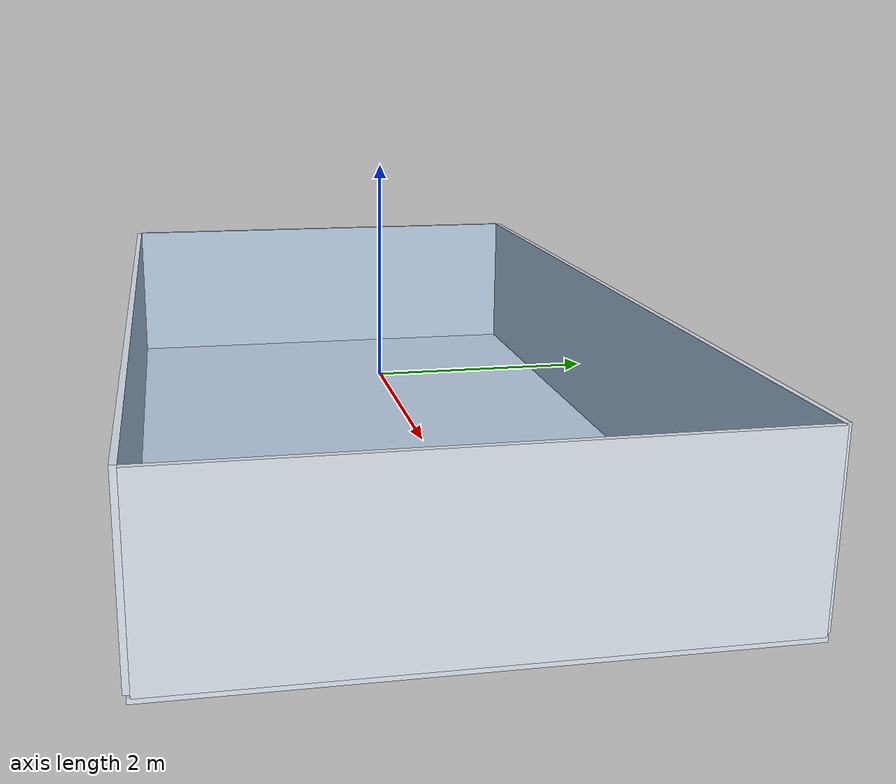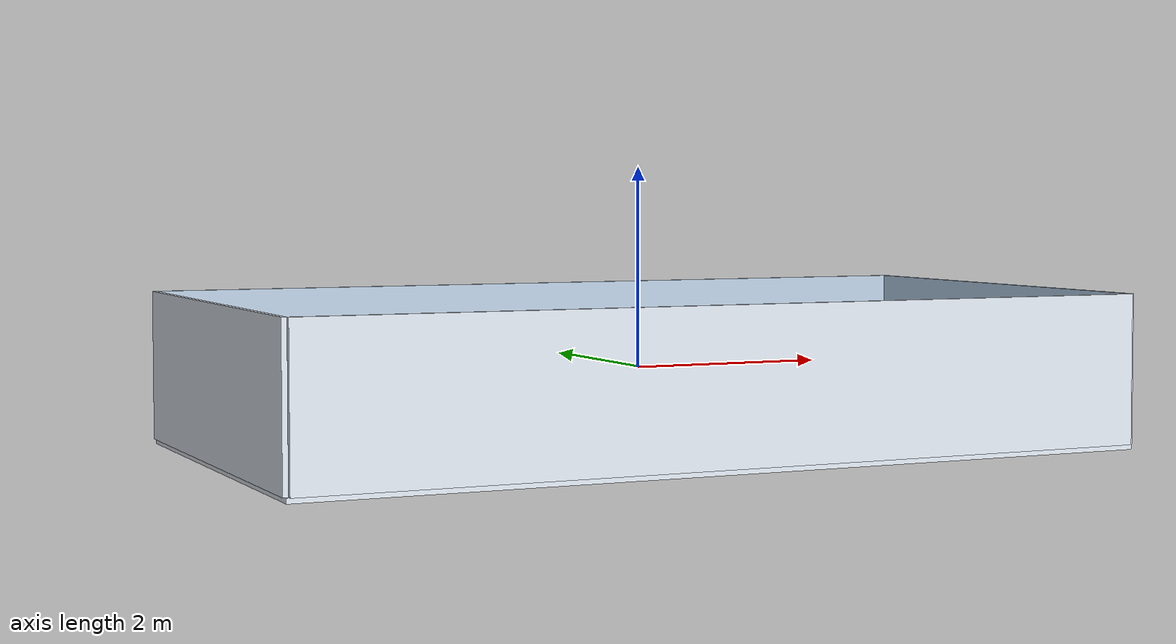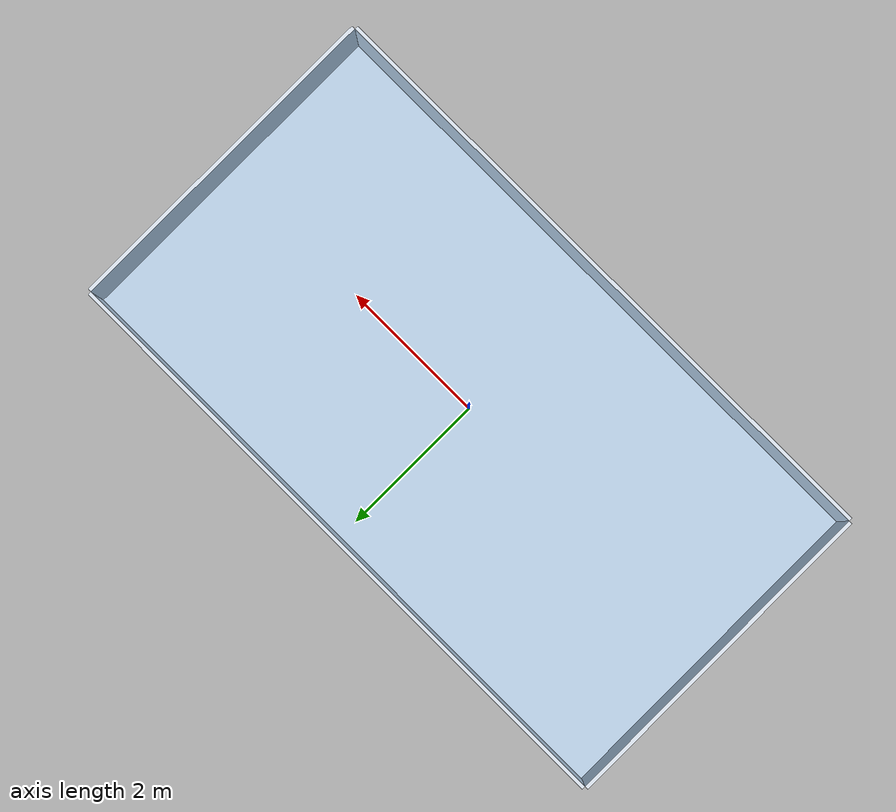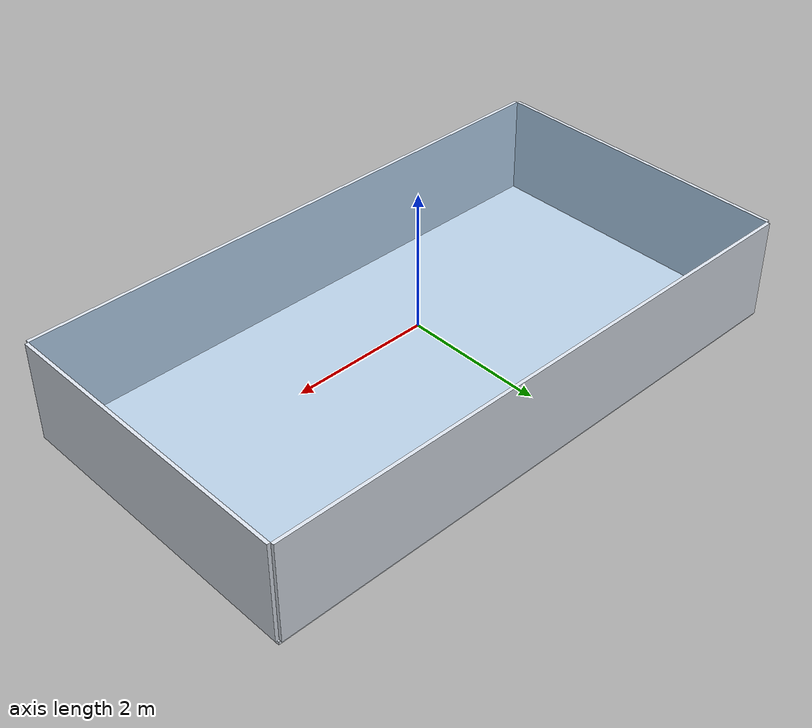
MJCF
<mujoco model="eel_pool_environment">
  <option timestep="0.002" gravity="0 0 0" integrator="implicitfast" cone="elliptic" iterations="100" density="850" viscosity="0.0007" />
  <asset>
    <material name="pool_wall" rgba="0.86 0.89 0.93 1" specular="0.2" shininess="0.2" reflectance="0.05" />
    <material name="water" rgba="0.20 0.52 0.80 0.18" specular="0.1" shininess="0.05" reflectance="0.02" />
  </asset>
  <worldbody>
    <light name="light" directional="true" diffuse="0.8 0.8 0.8" pos="0 0 2.5" />
    <camera name="top" pos="0 0 8.4" xyaxes="1 0 0 0 1 0" />
    <camera name="oblique" pos="-6.9 -4.9 3.4" xyaxes="0.62 -0.78 0 0.29 0.23 0.93" />
    <geom name="water_volume" type="box" pos="0 0 0" size="4.3 2.3 0.75" material="water" contype="0" conaffinity="0" mass="0" group="2" />
    <geom name="goal_region_marker" type="box" pos="3.45 0 -0.748" size="0.24 0.40 0.002" rgba="0.16 0.67 0.55 0.35" contype="0" conaffinity="0" mass="0" group="1" />
    <body name="visual_obstacle_body_0" mocap="true" pos="0 0 -5">
      <geom name="visual_obstacle_0" type="cylinder" pos="0 0 0" size="0.12 0.74" rgba="0.91 0.42 0.32 0" contype="2" conaffinity="1" mass="1e-6" group="1" />
    </body>
    <body name="visual_obstacle_body_1" mocap="true" pos="0 0 -5">
      <geom name="visual_obstacle_1" type="cylinder" pos="0 0 0" size="0.12 0.74" rgba="0.91 0.42 0.32 0" contype="2" conaffinity="1" mass="1e-6" group="1" />
    </body>
    <body name="visual_obstacle_body_2" mocap="true" pos="0 0 -5">
      <geom name="visual_obstacle_2" type="cylinder" pos="0 0 0" size="0.12 0.74" rgba="0.91 0.42 0.32 0" contype="2" conaffinity="1" mass="1e-6" group="1" />
    </body>
    <body name="visual_obstacle_body_3" mocap="true" pos="0 0 -5">
      <geom name="visual_obstacle_3" type="cylinder" pos="0 0 0" size="0.12 0.74" rgba="0.91 0.42 0.32 0" contype="2" conaffinity="1" mass="1e-6" group="1" />
    </body>
    <body name="visual_obstacle_body_4" mocap="true" pos="0 0 -5">
      <geom name="visual_obstacle_4" type="cylinder" pos="0 0 0" size="0.12 0.74" rgba="0.91 0.42 0.32 0" contype="2" conaffinity="1" mass="1e-6" group="1" />
    </body>
    <body name="visual_obstacle_body_5" mocap="true" pos="0 0 -5">
      <geom name="visual_obstacle_5" type="cylinder" pos="0 0 0" size="0.12 0.74" rgba="0.91 0.42 0.32 0" contype="2" conaffinity="1" mass="1e-6" group="1" />
    </body>
    <body name="visual_obstacle_body_6" mocap="true" pos="0 0 -5">
      <geom name="visual_obstacle_6" type="cylinder" pos="0 0 0" size="0.12 0.74" rgba="0.91 0.42 0.32 0" contype="2" conaffinity="1" mass="1e-6" group="1" />
    </body>
    <body name="visual_obstacle_body_7" mocap="true" pos="0 0 -5">
      <geom name="visual_obstacle_7" type="cylinder" pos="0 0 0" size="0.12 0.74" rgba="0.91 0.42 0.32 0" contype="2" conaffinity="1" mass="1e-6" group="1" />
    </body>
    <body name="visual_obstacle_body_8" mocap="true" pos="0 0 -5">
      <geom name="visual_obstacle_8" type="cylinder" pos="0 0 0" size="0.12 0.74" rgba="0.91 0.42 0.32 0" contype="2" conaffinity="1" mass="1e-6" group="1" />
    </body>
    <body name="visual_obstacle_body_9" mocap="true" pos="0 0 -5">
      <geom name="visual_obstacle_9" type="cylinder" pos="0 0 0" size="0.12 0.74" rgba="0.91 0.42 0.32 0" contype="2" conaffinity="1" mass="1e-6" group="1" />
    </body>
    <body name="visual_obstacle_body_10" mocap="true" pos="0 0 -5">
      <geom name="visual_obstacle_10" type="cylinder" pos="0 0 0" size="0.12 0.74" rgba="0.91 0.42 0.32 0" contype="2" conaffinity="1" mass="1e-6" group="1" />
    </body>
    <body name="visual_obstacle_body_11" mocap="true" pos="0 0 -5">
      <geom name="visual_obstacle_11" type="cylinder" pos="0 0 0" size="0.12 0.74" rgba="0.91 0.42 0.32 0" contype="2" conaffinity="1" mass="1e-6" group="1" />
    </body>
    <body name="visual_obstacle_body_12" mocap="true" pos="0 0 -5">
      <geom name="visual_obstacle_12" type="cylinder" pos="0 0 0" size="0.12 0.74" rgba="0.91 0.42 0.32 0" contype="2" conaffinity="1" mass="1e-6" group="1" />
    </body>
    <body name="visual_obstacle_body_13" mocap="true" pos="0 0 -5">
      <geom name="visual_obstacle_13" type="cylinder" pos="0 0 0" size="0.12 0.74" rgba="0.91 0.42 0.32 0" contype="2" conaffinity="1" mass="1e-6" group="1" />
    </body>
    <body name="visual_obstacle_body_14" mocap="true" pos="0 0 -5">
      <geom name="visual_obstacle_14" type="cylinder" pos="0 0 0" size="0.12 0.74" rgba="0.91 0.42 0.32 0" contype="2" conaffinity="1" mass="1e-6" group="1" />
    </body>
    <body name="visual_obstacle_body_15" mocap="true" pos="0 0 -5">
      <geom name="visual_obstacle_15" type="cylinder" pos="0 0 0" size="0.12 0.74" rgba="0.91 0.42 0.32 0" contype="2" conaffinity="1" mass="1e-6" group="1" />
    </body>
    <geom name="pool_floor" type="box" pos="0 0 -0.775" size="4.325 2.325 0.025" material="pool_wall" friction="0.8 0.1 0.1" contype="2" conaffinity="1" />
    <geom name="pool_wall_front" type="box" pos="4.325 0 0" size="0.025 2.3 0.75" material="pool_wall" friction="0.8 0.1 0.1" contype="2" conaffinity="1" />
    <geom name="pool_wall_back" type="box" pos="-4.325 0 0" size="0.025 2.3 0.75" material="pool_wall" friction="0.8 0.1 0.1" contype="2" conaffinity="1" />
    <geom name="pool_wall_left" type="box" pos="0 2.325 0" size="4.3 0.025 0.75" material="pool_wall" friction="0.8 0.1 0.1" contype="2" conaffinity="1" />
    <geom name="pool_wall_right" type="box" pos="0 -2.325 0" size="4.3 0.025 0.75" material="pool_wall" friction="0.8 0.1 0.1" contype="2" conaffinity="1" />
  </worldbody>
</mujoco>
